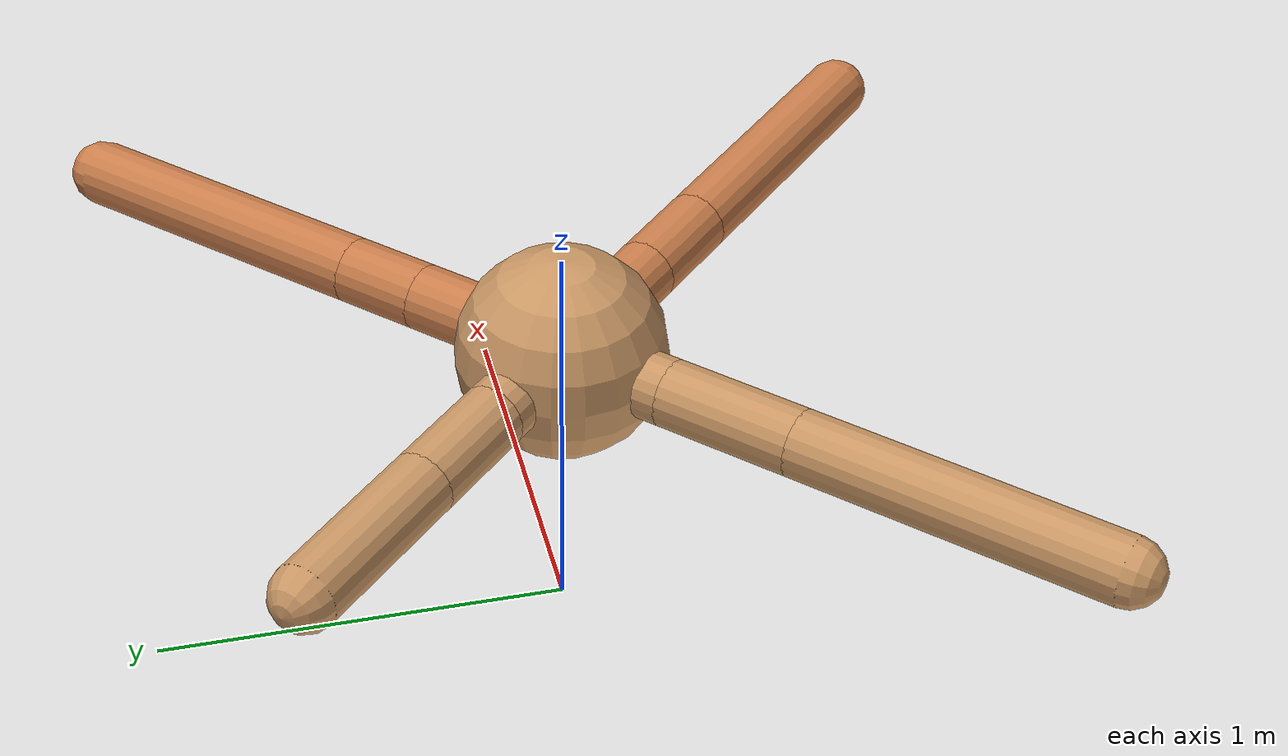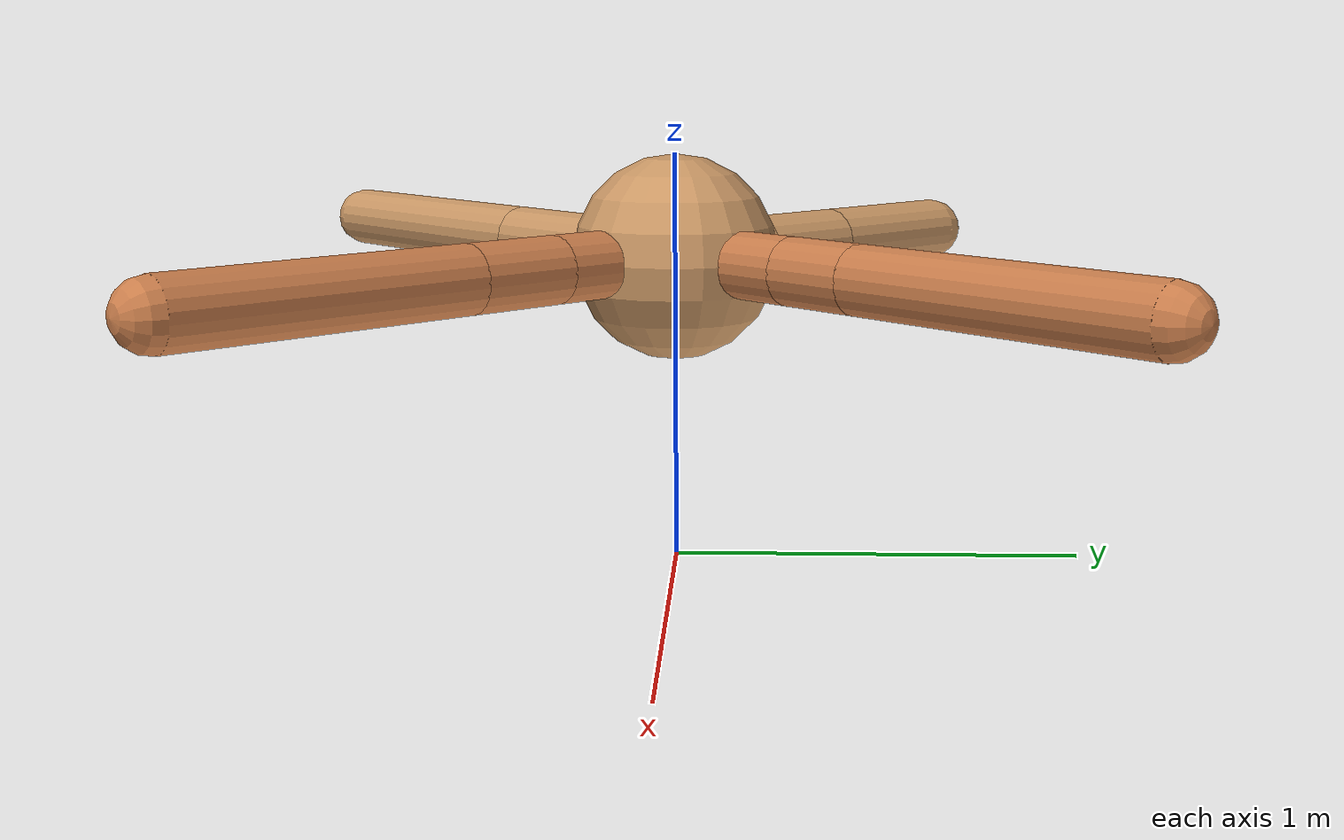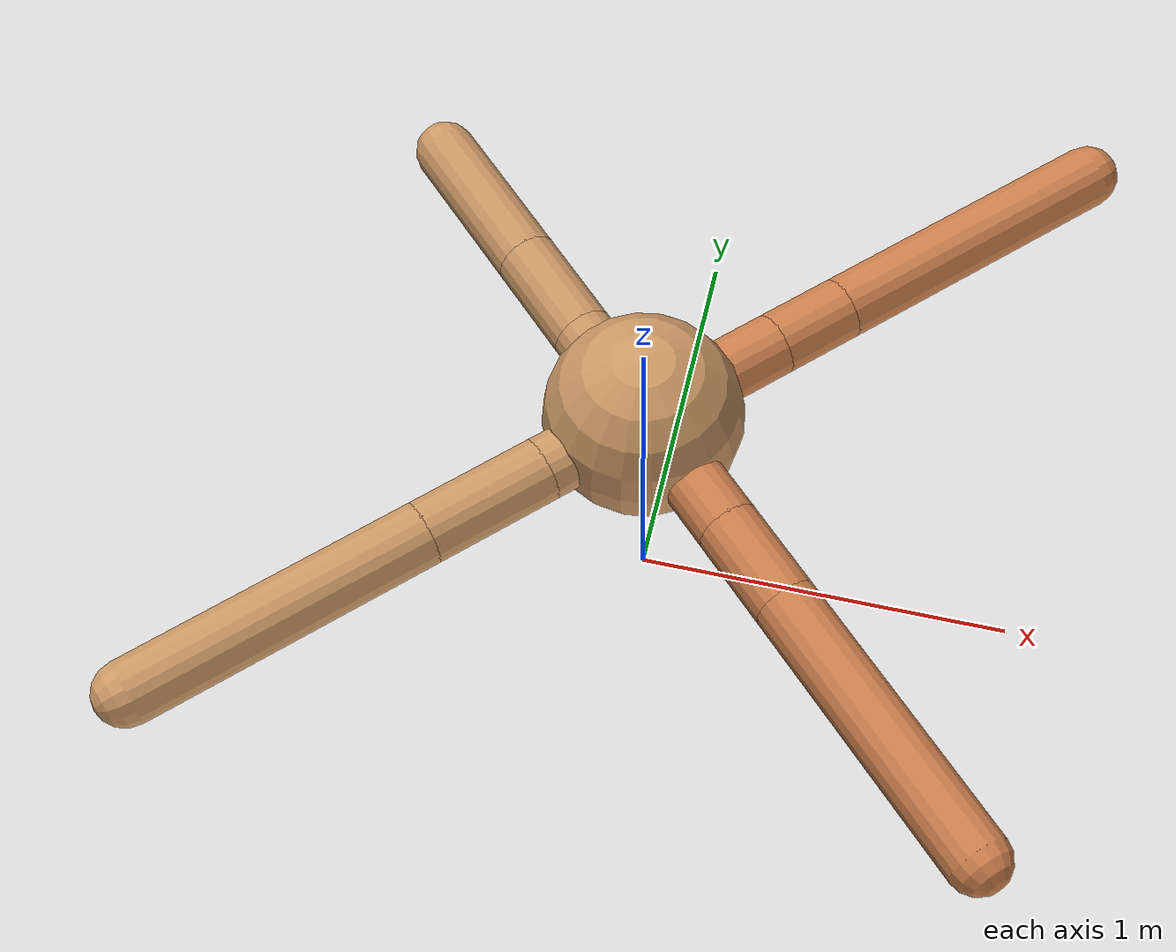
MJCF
<mujoco model="ant">
  <compiler angle="degree" coordinate="local" inertiafromgeom="true" />
  <option integrator="RK4" timestep="0.01" />
  <custom>
    <numeric data="0.0 0.0 0.55 1.0 0.0 0.0 0.0 0.0 1.0 0.0 -1.0 0.0 -1.0 0.0 1.0" name="init_qpos" />
  </custom>
  <default>
    <joint armature="1" damping="1" limited="true" />
    <geom conaffinity="0" condim="3" density="5.0" friction="1.5 0.1 0.1" margin="0.01" rgba="0.8 0.6 0.4 1" />
  </default>
  <worldbody>
    <body name="torso" pos="0 0 0.75">
      <geom name="torso_geom" pos="0 0 0" size="0.25" type="sphere" />

      <body name="front_left_leg" pos="0 0 0">
        <geom fromto="0.0 0.0 0.0 0.27472745184585107 0.27472745184585107 0.0" name="aux_1_geom" size="0.08" type="capsule" rgba=".8 .5 .3 1" />
        <body name="aux_1" pos="0.27472745184585107 0.27472745184585107 0.0">
          <joint axis="0 0 1" name="hip_1" pos="0.0 0.0 0.0" range="-40 40" type="hinge" />
          <geom fromto="0.0 0.0 0.0 0.14315838142004012 0.14315838142004012 0.0" name="left_leg_geom" size="0.08" type="capsule" rgba=".8 .5 .3 1" />
          <body pos="0.14315838142004012 0.14315838142004012 0.0" name="front_left_foot">
            <joint axis="-1 1 0" name="ankle_1" pos="0.0 0.0 0.0" range="30 100" type="hinge" />
            <geom fromto="0.0 0.0 0.0 0.5558690131139228 0.5558690131139228 0.0" name="left_ankle_geom" size="0.08" type="capsule" rgba=".8 .5 .3 1" />
          </body>
        </body>
      </body>
      <body name="front_right_leg" pos="0 0 0">
        <geom fromto="0.0 0.0 0.0 -0.20119408450888365 0.20119408450888365 0.0" name="aux_2_geom" size="0.08" type="capsule" />
        <body name="aux_2" pos="-0.20119408450888365 0.20119408450888365 0.0">
          <joint axis="0 0 1" name="hip_2" pos="0.0 0.0 0.0" range="-40 40" type="hinge" />
          <geom fromto="0.0 0.0 0.0 -0.19205540533204873 0.19205540533204873 0.0" name="right_leg_geom" size="0.08" type="capsule" />
          <body pos="-0.19205540533204873 0.19205540533204873 0.0" name="front_right_foot">
            <joint axis="1 1 0" name="ankle_2" pos="0.0 0.0 0.0" range="-100 -30" type="hinge" />
            <geom fromto="0.0 0.0 0.0 -0.2946325429186915 0.2946325429186915 0.0" name="right_ankle_geom" size="0.08" type="capsule" />
          </body>
        </body>
      </body>
      <body name="left_back_leg" pos="0 0 0">
        <geom fromto="0.0 0.0 0.0 -0.20411407620601923 -0.20411407620601923 0.0" name="aux_3_geom" size="0.08" type="capsule" />
        <body name="aux_3" pos="-0.20411407620601923 -0.20411407620601923 0.0">
          <joint axis="0 0 1" name="hip_3" pos="0.0 0.0 0.0" range="-40 40" type="hinge" />
          <geom fromto="0.0 0.0 0.0 -0.23085870433971478 -0.23085870433971478 0.0" name="back_leg_geom" size="0.08" type="capsule" />
          <body pos="-0.23085870433971478 -0.23085870433971478 0.0" name="left_back_foot">
            <joint axis="-1 1 0" name="ankle_3" pos="0.0 0.0 0.0" range="-100 -30" type="hinge" />
            <geom fromto="0.0 0.0 0.0 -0.5471023809098907 -0.5471023809098907 0.0" name="third_ankle_geom" size="0.08" type="capsule" />
          </body>
        </body>
      </body>
      <body name="right_back_leg" pos="0 0 0">
        <geom fromto="0.0 0.0 0.0 0.2620581661538788 -0.2620581661538788 0.0" name="aux_4_geom" size="0.08" type="capsule" rgba=".8 .5 .3 1" />
        <body name="aux_4" pos="0.2620581661538788 -0.2620581661538788 0.0">
          <joint axis="0 0 1" name="hip_4" pos="0.0 0.0 0.0" range="-40 40" type="hinge" />
          <geom fromto="0.0 0.0 0.0 0.1700232038479906 -0.1700232038479906 0.0" name="rightback_leg_geom" size="0.08" type="capsule" rgba=".8 .5 .3 1" />
          <body pos="0.1700232038479906 -0.1700232038479906 0.0" name="right_back_foot">
            <joint axis="1 1 0" name="ankle_4" pos="0.0 0.0 0.0" range="30 100" type="hinge" />
            <geom fromto="0.0 0.0 0.0 0.52340033972654 -0.52340033972654 0.0" name="fourth_ankle_geom" size="0.08" type="capsule" rgba=".8 .5 .3 1" />
          </body>
        </body>
      </body>
    </body>
  </worldbody>
  <actuator>
    <motor ctrllimited="true" ctrlrange="-1.0 1.0" joint="hip_4" gear="150" />
    <motor ctrllimited="true" ctrlrange="-1.0 1.0" joint="ankle_4" gear="150" />
    <motor ctrllimited="true" ctrlrange="-1.0 1.0" joint="hip_1" gear="150" />
    <motor ctrllimited="true" ctrlrange="-1.0 1.0" joint="ankle_1" gear="150" />
    <motor ctrllimited="true" ctrlrange="-1.0 1.0" joint="hip_2" gear="150" />
    <motor ctrllimited="true" ctrlrange="-1.0 1.0" joint="ankle_2" gear="150" />
    <motor ctrllimited="true" ctrlrange="-1.0 1.0" joint="hip_3" gear="150" />
    <motor ctrllimited="true" ctrlrange="-1.0 1.0" joint="ankle_3" gear="150" />
  </actuator>
</mujoco>
